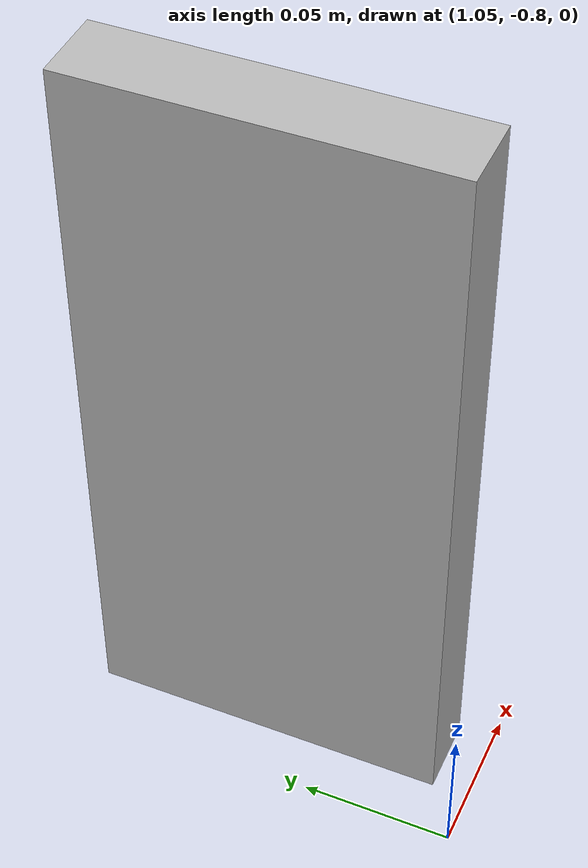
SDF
<?xml version="1.0" ?>
<sdf version="1.6">
  <model name="traffic_right">
    <static>true</static>
    <link name="box">
      <pose>1.08 -0.728 0.125 0 -0 -1.57</pose>
      <collision name="collision">
        <geometry>
          <box>
            <size>0.12 0.025 0.25</size>
          </box>
        </geometry>
      </collision>
      <visual name="visual">
        <geometry>
          <box>
            <size>0.12 0.025 0.25</size>
          </box>
        </geometry>
        <material>
          <script>
            <uri>model://turtlebot3_autorace_2020/traffic_right/materials/scripts</uri>
            <uri>model://turtlebot3_autorace_2020/traffic_right/materials/textures</uri>
            <name>traffic_right</name>
          </script>
        </material>
      </visual>
    </link>
  </model>
</sdf>
